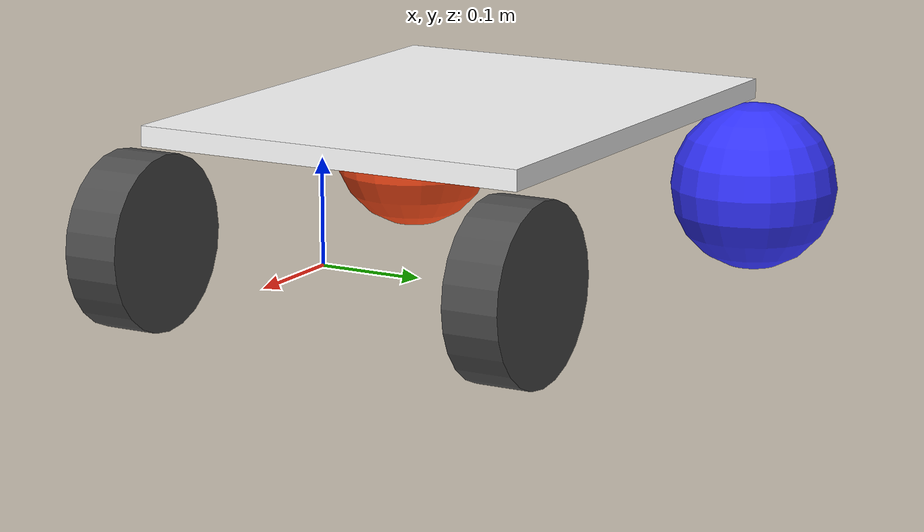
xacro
<?xml version="1.0"?>
<robot xmlns:xacro="http://www.ros.org/wiki/xacro" name="robot">
    <link name="base_link"></link>
    <xacro:arg name="use_ros2_control" default="true" />
    <xacro:arg name="sim_mode" default="false" />
    <xacro:include filename="rover_core.xacro" />

    <xacro:if value="$(arg use_ros2_control)">
        <xacro:include filename="ros2_control.xacro" />
    </xacro:if>
    <xacro:unless value="$(arg use_ros2_control)">
        <xacro:include filename="gazebo_control.xacro" />
    </xacro:unless>
</robot>

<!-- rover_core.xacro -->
<robot xmlns:xacro="http://www.ros.org/wiki/xacro">
    <xacro:include filename="inertial_macros.xacro" />

    <material name="white">
        <color rgba="1 1 1 1" />
    </material>

    <material name="orange">
        <color rgba="1 0.3 0.1 1" />
    </material>

    <material name="blue">
        <color rgba="0.2 0.2 1 1" />
    </material>

    <material name="black">
        <color rgba="0 0 0 1" />
    </material>

    <material name="dark_grey">
        <color rgba="0.3 0.3 0.3 1" />
    </material>

    <!-- CHASSIS LINK -->

    <joint name="chassis_joint" type="fixed">
        <parent link="base_link" />
        <child link="chassis" />
        <origin xyz="-0.25 0 0.1" />
    </joint>

    <link name="chassis">
        <visual>
            <origin xyz="0.0 0 0" rpy="0 0 0" />
            <geometry>
                <box size="0.5 0.4 0.02" />
            </geometry>
            <material name="white" />
        </visual>
        <xacro:inertial_box mass="0.5" x="0.5" y="0.4" z="0.02">
            <origin xyz="0 0 0" rpy="0 0 0" />
        </xacro:inertial_box>
        <collision>
            <origin xyz="0 0 0"/>
            <geometry>
                <box size="0.5 0.4 0.02"/>
            </geometry>
        </collision>
    </link>

    <gazebo reference="chassis">
        <material>Gazebo/Orange</material>
    </gazebo>

    <!-- LEFT WHEEL LINK -->

    <joint name="left_wheel_joint" type="continuous">
        <parent link="base_link" />
        <child link="left_wheel" />
        <origin xyz="0 0.2 0" rpy="-${pi/2} 0 0" />
        <axis xyz="0 0 1" />
    </joint>

    <link name="left_wheel">
        <visual>
            <geometry>
                <cylinder length="0.055" radius="0.085" />
            </geometry>
            <material name="dark_grey" />
        </visual>
        <xacro:inertial_cylinder mass="0.1" length="0.055" radius="0.085">
            <origin xyz="0 0 0" rpy="0 0 0" />
        </xacro:inertial_cylinder>
        <collision>
            <geometry>
                <cylinder length="0.055" radius="0.085" />
            </geometry>
        </collision>
    </link>

    <gazebo reference="left_wheel">
        <material>Gazebo/Blue</material>
    </gazebo>

    <joint name="right_wheel_joint" type="continuous">
        <parent link="base_link" />
        <child link="right_wheel" />
        <origin xyz="0 -0.2 0" rpy="${pi/2} 0 0" />
        <axis xyz="0 0 -1" />
    </joint>

    <!-- RIGHT WHEEL LINK -->

    <link name="right_wheel">
        <visual>
            <geometry>
                <cylinder length="0.055" radius="0.085" />
            </geometry>
            <material name="dark_grey" />
        </visual>
        <xacro:inertial_cylinder mass="0.1" length="0.055" radius="0.085">
            <origin xyz="0 0 0" rpy="0 0 0" />
        </xacro:inertial_cylinder>
        <collision>
            <geometry>
                <cylinder length="0.055" radius="0.085" />
            </geometry>
        </collision>
    </link>

    <gazebo reference="right_wheel">
        <material>Gazebo/Blue</material>
    </gazebo>

     <!-- CASTER WHEELS LINK -->

    <joint name="left_caster_wheel_joint" type="fixed">
        <parent link="base_link" />
        <child link="left_caster_wheel" />
        <origin xyz="-0.5 -0.2 0" rpy="0 0 0" />
    </joint>

    <link name="left_caster_wheel">
        <visual>
            <geometry>
                <sphere radius="0.085" />
            </geometry>
            <material name="orange" />
        </visual>
        <xacro:inertial_sphere mass="0.1" radius="0.085">
            <origin xyz="0 0 0" rpy="0 0 0" />
        </xacro:inertial_sphere>
        <collision>
            <geometry>
                <sphere radius="0.085"/>
            </geometry>
        </collision>
    </link>

    <gazebo reference="left_caster_wheel">
        <material>Gazebo/White</material>
        <mu1 value="0.001" />
        <mu2 value="0.001" />
    </gazebo>

    <joint name="right_caster_wheel_joint" type="fixed">
        <parent link="base_link" />
        <child link="right_caster_wheel" />
        <origin xyz="-0.5 0.2 0" rpy="0 0 0" />
    </joint>

    <link name="right_caster_wheel">
        <visual>
            <geometry>
                <sphere radius="0.085" />
            </geometry>
            <material name="blue" />
        </visual>
        <xacro:inertial_sphere mass="0.1" radius="0.085">
            <origin xyz="0 0 0" rpy="0 0 0" />
        </xacro:inertial_sphere>
        <collision>
            <geometry>
                <sphere radius="0.085"/>
            </geometry>
        </collision>
    </link>

    <gazebo reference="right_caster_wheel">
        <material>Gazebo/White</material>
        <mu1 value="0.001" />
        <mu2 value="0.001" />
    </gazebo>
</robot>
